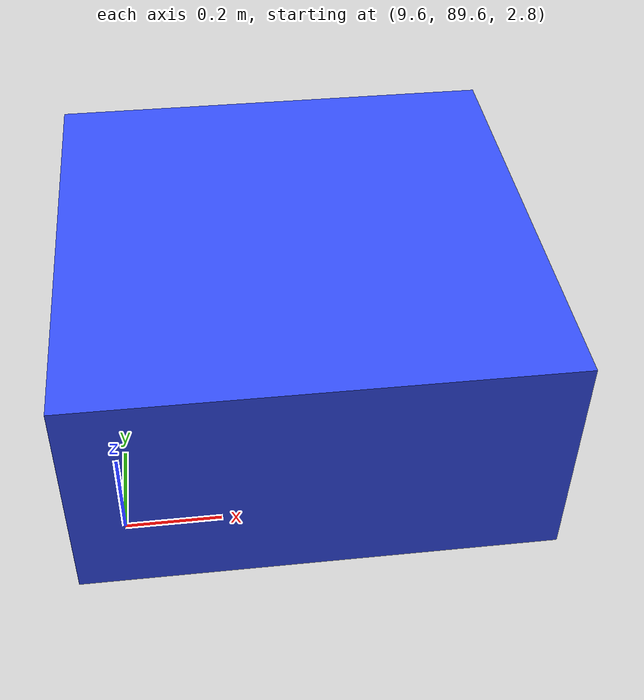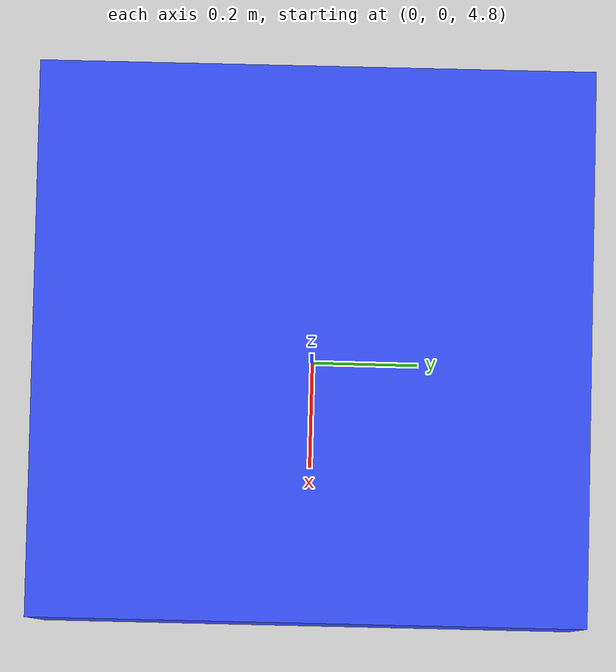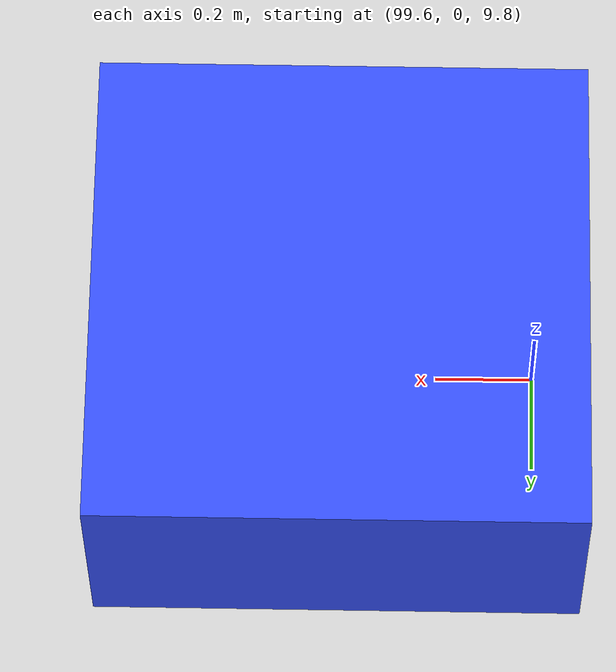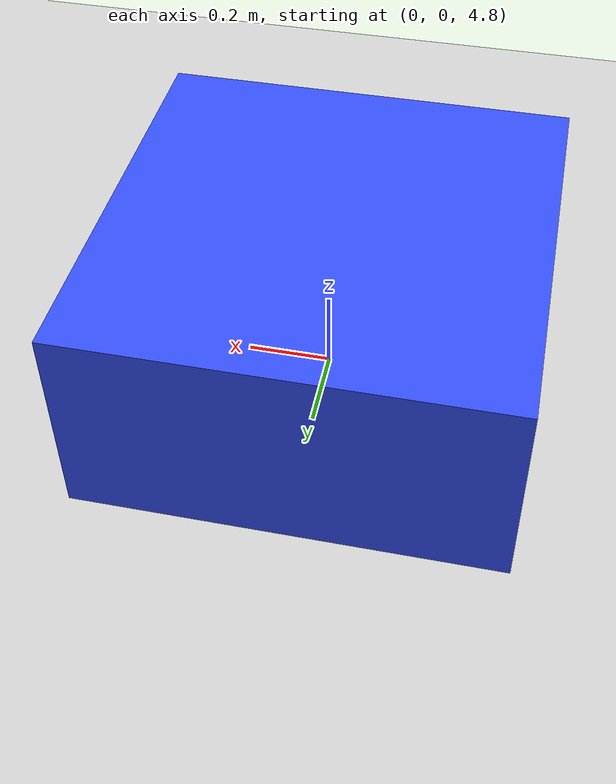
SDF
<?xml version='1.0' encoding='utf-8'?>
<sdf version="1.9">
  <world name="px4_acoustic">
    <physics type="ode">
      <max_step_size>0.004</max_step_size>
      <real_time_factor>1.0</real_time_factor>
      <real_time_update_rate>250</real_time_update_rate>
    </physics>
    <gravity>0 0 -9.8</gravity>
    <magnetic_field>6e-06 2.3e-05 -4.2e-05</magnetic_field>
    <atmosphere type="adiabatic" />
    <scene>
      <grid>false</grid>
      <ambient>0.4 0.4 0.4 1</ambient>
      <background>0.7 0.7 0.7 1</background>
      <shadows>true</shadows>
    </scene>
    <model name="ground_plane">
      <static>true</static>
      <link name="link">
        <collision name="collision">
          <geometry>
            <plane>
              <normal>0 0 1</normal>
              <size>1 1</size>
            </plane>
          </geometry>
          <surface>
            <friction>
              <ode />
            </friction>
            <bounce />
            <contact />
          </surface>
        </collision>
        <visual name="visual">
          <geometry>
            <plane>
              <normal>0 0 1</normal>
              <size>500 500</size>
            </plane>
          </geometry>
          <material>
            <ambient>0.8 0.8 0.8 1</ambient>
            <diffuse>0.8 0.8 0.8 1</diffuse>
            <specular>0.8 0.8 0.8 1</specular>
          </material>
        </visual>
        <pose>0 0 0 0 -0 0</pose>
        <inertial>
          <pose>0 0 0 0 -0 0</pose>
          <mass>1</mass>
          <inertia>
            <ixx>1</ixx>
            <ixy>0</ixy>
            <ixz>0</ixz>
            <iyy>1</iyy>
            <iyz>0</iyz>
            <izz>1</izz>
          </inertia>
        </inertial>
        <enable_wind>false</enable_wind>
      </link>
      <pose>0 0 0 0 -0 0</pose>
      <self_collide>false</self_collide>
    </model>
    <light name="sunUTC" type="directional">
      <pose>0 0 500 0 -0 0</pose>
      <cast_shadows>true</cast_shadows>
      <intensity>1</intensity>
      <direction>0.001 0.625 -0.78</direction>
      <diffuse>0.904 0.904 0.904 1</diffuse>
      <specular>0.271 0.271 0.271 1</specular>
      <attenuation>
        <range>2000</range>
        <linear>0</linear>
        <constant>1</constant>
        <quadratic>0</quadratic>
      </attenuation>
      <spot>
        <inner_angle>0</inner_angle>
        <outer_angle>0</outer_angle>
        <falloff>0</falloff>
      </spot>
    </light>
    <spherical_coordinates>
      <surface_model>EARTH_WGS84</surface_model>
      <world_frame_orientation>ENU</world_frame_orientation>
      <latitude_deg>47.397971057728974</latitude_deg>
      <longitude_deg> 8.546163739800146</longitude_deg>
      <elevation>0</elevation>
    </spherical_coordinates>
    <plugin filename="gz-sim-physics-system" name="gz::sim::systems::Physics" />
    <plugin filename="gz-sim-user-commands-system" name="gz::sim::systems::UserCommands" />
    <plugin filename="gz-sim-scene-broadcaster-system" name="gz::sim::systems::SceneBroadcaster" />
    <plugin filename="gz-sim-contact-system" name="gz::sim::systems::Contact" />
    <plugin filename="gz-sim-imu-system" name="gz::sim::systems::Imu" />
    <plugin filename="gz-sim-air-pressure-system" name="gz::sim::systems::AirPressure" />
    <plugin filename="gz-sim-air-speed-system" name="gz::sim::systems::AirSpeed" />
    <plugin filename="gz-sim-apply-link-wrench-system" name="gz::sim::systems::ApplyLinkWrench" />
    <plugin filename="gz-sim-navsat-system" name="gz::sim::systems::NavSat" />
    <plugin filename="gz-sim-magnetometer-system" name="gz::sim::systems::Magnetometer" />
    <plugin filename="gz-sim-sensors-system" name="gz::sim::systems::Sensors">
      <render_engine>ogre2</render_engine>
    </plugin>
    <model name="S0">
      <static>true</static>
      <pose>0.0 0.0 5.0 0.0 0.0 0.0</pose>
      <link name="array_center">
        <visual name="station">
          <geometry>
            <box>
              <size>1 1 0.5</size>
            </box>
          </geometry>
          <material>
            <ambient>0.2 0.3 0.95 1</ambient>
            <diffuse>0.2 0.3 0.95 1</diffuse>
          </material>
        </visual>
      </link>
    </model>
    <model name="S1">
      <static>true</static>
      <pose>100.0 0.0 10.0 0.0 0.0 0.0</pose>
      <link name="array_center">
        <visual name="station">
          <geometry>
            <box>
              <size>1 1 0.5</size>
            </box>
          </geometry>
          <material>
            <ambient>0.2 0.3 0.95 1</ambient>
            <diffuse>0.2 0.3 0.95 1</diffuse>
          </material>
        </visual>
      </link>
    </model>
    <model name="S2">
      <static>true</static>
      <pose>10.0 90.0 3.0 0.0 0.0 0.0</pose>
      <link name="array_center">
        <visual name="station">
          <geometry>
            <box>
              <size>1 1 0.5</size>
            </box>
          </geometry>
          <material>
            <ambient>0.2 0.3 0.95 1</ambient>
            <diffuse>0.2 0.3 0.95 1</diffuse>
          </material>
        </visual>
      </link>
    </model>
    <plugin filename="libgazebo_px4_observer.so" name="acoustic::X500Observer">
      <model_name>x500_0</model_name>
      <output_csv>/home/leo/projects/diploma-gazebo/uav_acoustic_model/results/px4_flight/unseen_spatial_001/gazebo_state.csv</output_csv>
      <phase_file>/home/leo/projects/diploma-gazebo/uav_acoustic_model/results/px4_flight/unseen_spatial_001/flight_phase.txt</phase_file>
      <export_period_s>0.02</export_period_s>
    </plugin>
  </world>
</sdf>
